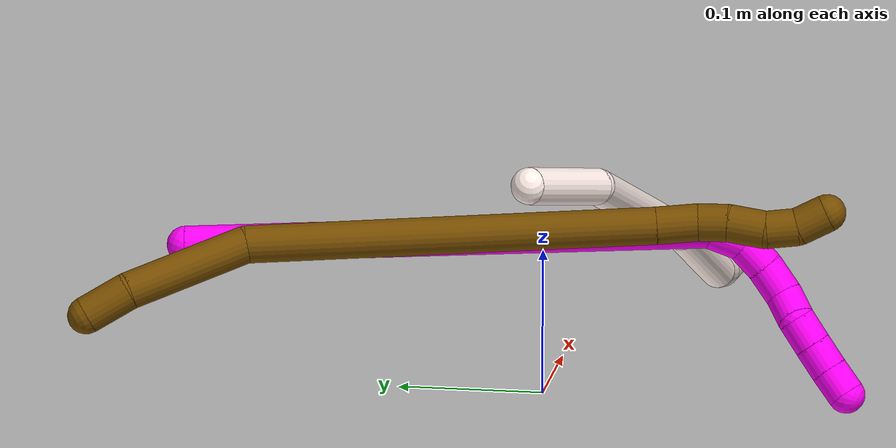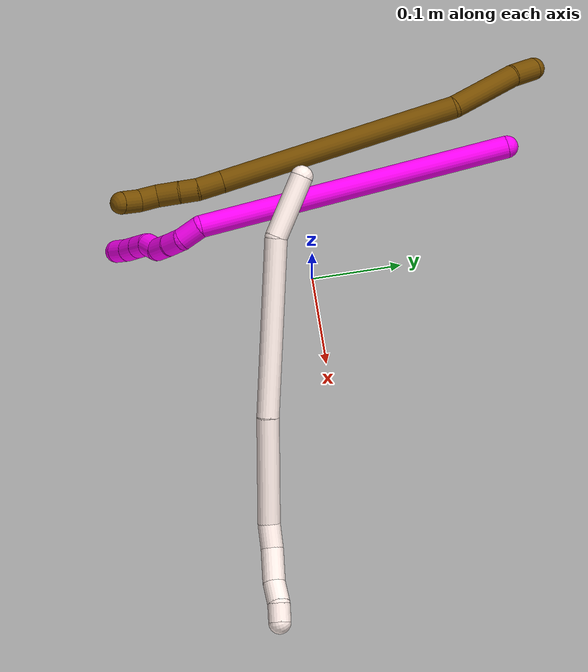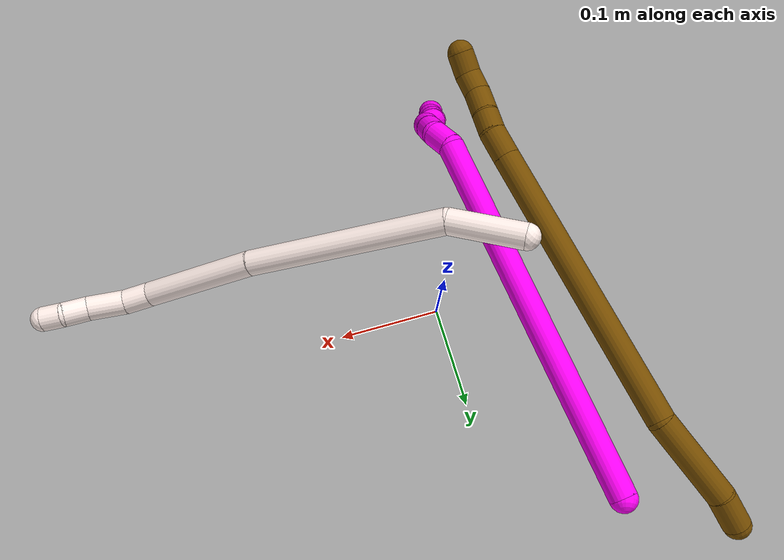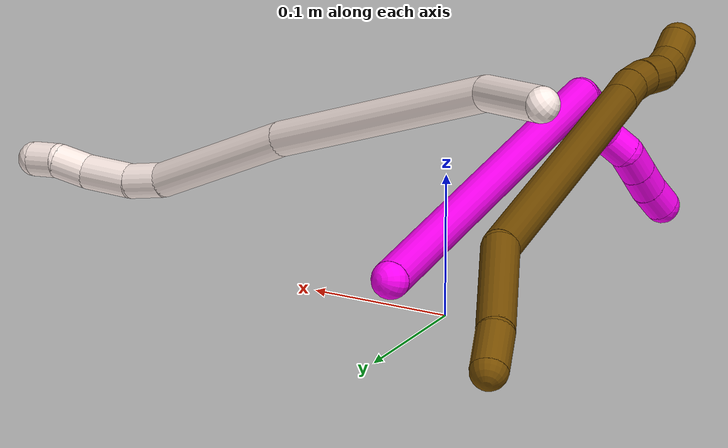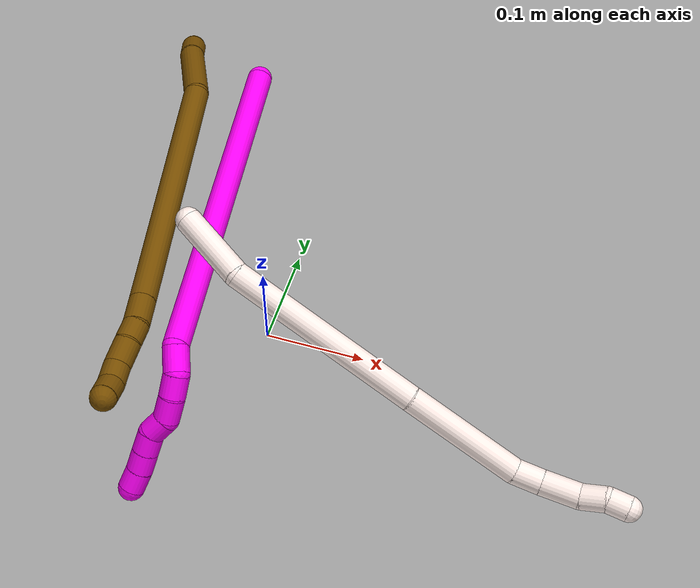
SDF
<sdf version="1.7">
 <world name="default">
  <model name="photoneo_s_sensor">
   <static>1</static>
   <pose>0 0 2 1.57079 1.57079 3.14159</pose>
   <link name="link">
    <inertial><mass>0.1</mass></inertial>
    <sensor name="sensor" type="depth">
     <update_rate>30</update_rate>
     <camera>
      <horizontal_fov>1.22</horizontal_fov>
      <image><width>1920</width><height>1200</height><format>B8G8R8</format></image>
      <clip><near>0.1</near><far>4</far></clip>
      <depth_camera><output>points</output></depth_camera>
     </camera>
     <plugin name="camera_plugin" filename="libgazebo_ros_depth_camera.so">
      <baseline>0.2</baseline>
      <alwaysOn>1</alwaysOn>
      <updateRate>0.0</updateRate>
      <cameraName>camera_ir</cameraName>
      <imageTopicName>/camera/color/image_raw</imageTopicName>
      <cameraInfoTopicName>/camera/color/camera_info</cameraInfoTopicName>
      <depthImageTopicName>/camera/depth/image_raw</depthImageTopicName>
      <depthImageCameraInfoTopicName>/camera/depth/camera_info</depthImageCameraInfoTopicName>
      <pointCloudTopicName>/camera/depth/points</pointCloudTopicName>
      <frameName>fr_optical</frameName>
      <pointCloudCutoff>0.1</pointCloudCutoff>
      <pointCloudCutoffMax>2.0</pointCloudCutoffMax>
      <distortionK1>0</distortionK1>
      <distortionK2>0</distortionK2>
      <distortionK3>0</distortionK3>
      <distortionT1>0</distortionT1>
      <distortionT2>0</distortionT2>
      <CxPrime>0</CxPrime>
      <Cx>0</Cx>
      <Cy>0</Cy>
      <focalLength>0</focalLength>
      <hackBaseline>0</hackBaseline>
     </plugin>
    </sensor>
   </link>
  </model>
  <model name="bin">
   <static>1</static>
   <link name="bottom">
    <collision name="collision-bottom">
     <pose>0 0 -0.01 0 -0 0</pose>
     <geometry><box><size>0.8 0.6 0.02</size></box></geometry>
     <surface>
      <friction><ode><mu>100</mu><mu2>100</mu2></ode></friction>
      <contact><collide_bitmask>65535</collide_bitmask></contact>
     </surface>
    </collision>
   </link>
   <link name="west_wall">
    <collision name="collision-west_wall">
     <pose>-0.41 0 0.1 0 -0 0</pose>
     <geometry><box><size>0.02 0.6 0.2</size></box></geometry>
     <surface>
      <friction><ode><mu>100</mu><mu2>100</mu2></ode></friction>
      <contact><collide_bitmask>65535</collide_bitmask></contact>
     </surface>
    </collision>
   </link>
   <link name="east_wall">
    <collision name="collision-east_wall">
     <pose>0.41 0 0.1 0 -0 0</pose>
     <geometry><box><size>0.02 0.6 0.2</size></box></geometry>
     <surface>
      <friction><ode><mu>100</mu><mu2>100</mu2></ode></friction>
      <contact><collide_bitmask>65535</collide_bitmask></contact>
     </surface>
    </collision>
   </link>
   <link name="south_wall">
    <collision name="collision-south_wall">
     <pose>0 -0.31 0.1 0 -0 0</pose>
     <geometry><box><size>0.8 0.02 0.2</size></box></geometry>
     <surface>
      <friction><ode><mu>100</mu><mu2>100</mu2></ode></friction>
      <contact><collide_bitmask>65535</collide_bitmask></contact>
     </surface>
    </collision>
   </link>
   <link name="north_wall">
    <collision name="collision-north_wall">
     <pose>0 0.31 0.1 0 -0 0</pose>
     <geometry><box><size>0.8 0.02 0.2</size></box></geometry>
     <surface>
      <friction><ode><mu>100</mu><mu2>100</mu2></ode></friction>
      <contact><collide_bitmask>65535</collide_bitmask></contact>
     </surface>
    </collision>
   </link>
  </model>
  <model name="10">
   <static>0</static>
   <link name="10">
    <collision name="collision-cylinder-e_1_1_4">
     <pose>0.041733 -0.072814 -0.153196 2.6979 0.241249 0.986218</pose>
     <geometry><cylinder><radius>0.0125</radius><length>0.349356</length></cylinder></geometry>
     <surface>
      <friction><ode><mu>1.16</mu><mu2>1.16</mu2><slip1>0</slip1><slip2>0</slip2></ode></friction>
      <contact><ode><kp>1e+06</kp><kd>1</kd><max_vel>0</max_vel><min_depth>0.001</min_depth></ode></contact>
     </surface>
    </collision>
    <visual name="visual-cylinder-e_1_1_4">
     <pose>0.041733 -0.072814 -0.153196 2.6979 0.241249 0.986218</pose>
     <geometry><cylinder><radius>0.0125</radius><length>0.349356</length></cylinder></geometry>
     <material><ambient>1 0 0.964706 1</ambient></material>
    </visual>
    <collision name="collision-cylinder-e_2_4_5">
     <pose>0.090912 -0.146474 -0.3166 3.05892 0.628523 2.88845</pose>
     <geometry><cylinder><radius>0.0125</radius><length>0.025327</length></cylinder></geometry>
     <surface>
      <friction><ode><mu>1.16</mu><mu2>1.16</mu2><slip1>0</slip1><slip2>0</slip2></ode></friction>
      <contact><ode><kp>1e+06</kp><kd>1</kd><max_vel>0</max_vel><min_depth>0.001</min_depth></ode></contact>
     </surface>
    </collision>
    <visual name="visual-cylinder-e_2_4_5">
     <pose>0.090912 -0.146474 -0.3166 3.05892 0.628523 2.88845</pose>
     <geometry><cylinder><radius>0.0125</radius><length>0.025327</length></cylinder></geometry>
     <material><ambient>1 0 0.964706 1</ambient></material>
    </visual>
    <collision name="collision-cylinder-e_3_5_6">
     <pose>0.102739 -0.142999 -0.335895 -2.69773 0.410664 -1.49072</pose>
     <geometry><cylinder><radius>0.0125</radius><length>0.021947</length></cylinder></geometry>
     <surface>
      <friction><ode><mu>1.16</mu><mu2>1.16</mu2><slip1>0</slip1><slip2>0</slip2></ode></friction>
      <contact><ode><kp>1e+06</kp><kd>1</kd><max_vel>0</max_vel><min_depth>0.001</min_depth></ode></contact>
     </surface>
    </collision>
    <visual name="visual-cylinder-e_3_5_6">
     <pose>0.102739 -0.142999 -0.335895 -2.69773 0.410664 -1.49072</pose>
     <geometry><cylinder><radius>0.0125</radius><length>0.021947</length></cylinder></geometry>
     <material><ambient>1 0 0.964706 1</ambient></material>
    </visual>
    <collision name="collision-cylinder-e_4_6_7">
     <pose>0.110968 -0.132607 -0.353857 -2.54167 0.343654 -1.02262</pose>
     <geometry><cylinder><radius>0.0125</radius><length>0.022843</length></cylinder></geometry>
     <surface>
      <friction><ode><mu>1.16</mu><mu2>1.16</mu2><slip1>0</slip1><slip2>0</slip2></ode></friction>
      <contact><ode><kp>1e+06</kp><kd>1</kd><max_vel>0</max_vel><min_depth>0.001</min_depth></ode></contact>
     </surface>
    </collision>
    <visual name="visual-cylinder-e_4_6_7">
     <pose>0.110968 -0.132607 -0.353857 -2.54167 0.343654 -1.02262</pose>
     <geometry><cylinder><radius>0.0125</radius><length>0.022843</length></cylinder></geometry>
     <material><ambient>1 0 0.964706 1</ambient></material>
    </visual>
    <collision name="collision-cylinder-e_5_7_8">
     <pose>0.113174 -0.120191 -0.370514 -2.45751 -0.162101 0.448615</pose>
     <geometry><cylinder><radius>0.0125</radius><length>0.020345</length></cylinder></geometry>
     <surface>
      <friction><ode><mu>1.16</mu><mu2>1.16</mu2><slip1>0</slip1><slip2>0</slip2></ode></friction>
      <contact><ode><kp>1e+06</kp><kd>1</kd><max_vel>0</max_vel><min_depth>0.001</min_depth></ode></contact>
     </surface>
    </collision>
    <visual name="visual-cylinder-e_5_7_8">
     <pose>0.113174 -0.120191 -0.370514 -2.45751 -0.162101 0.448615</pose>
     <geometry><cylinder><radius>0.0125</radius><length>0.020345</length></cylinder></geometry>
     <material><ambient>1 0 0.964706 1</ambient></material>
    </visual>
    <collision name="collision-cylinder-e_6_8_9">
     <pose>0.114341 -0.108147 -0.386122 -2.51223 0.282308 -0.82324</pose>
     <geometry><cylinder><radius>0.0125</radius><length>0.020164</length></cylinder></geometry>
     <surface>
      <friction><ode><mu>1.16</mu><mu2>1.16</mu2><slip1>0</slip1><slip2>0</slip2></ode></friction>
      <contact><ode><kp>1e+06</kp><kd>1</kd><max_vel>0</max_vel><min_depth>0.001</min_depth></ode></contact>
     </surface>
    </collision>
    <visual name="visual-cylinder-e_6_8_9">
     <pose>0.114341 -0.108147 -0.386122 -2.51223 0.282308 -0.82324</pose>
     <geometry><cylinder><radius>0.0125</radius><length>0.020164</length></cylinder></geometry>
     <material><ambient>1 0 0.964706 1</ambient></material>
    </visual>
    <collision name="collision-cylinder-e_7_9_10">
     <pose>0.120047 -0.096901 -0.40175 -2.52352 0.293958 -0.868401</pose>
     <geometry><cylinder><radius>0.0125</radius><length>0.02</length></cylinder></geometry>
     <surface>
      <friction><ode><mu>1.16</mu><mu2>1.16</mu2><slip1>0</slip1><slip2>0</slip2></ode></friction>
      <contact><ode><kp>1e+06</kp><kd>1</kd><max_vel>0</max_vel><min_depth>0.001</min_depth></ode></contact>
     </surface>
    </collision>
    <visual name="visual-cylinder-e_7_9_10">
     <pose>0.120047 -0.096901 -0.40175 -2.52352 0.293958 -0.868401</pose>
     <geometry><cylinder><radius>0.0125</radius><length>0.02</length></cylinder></geometry>
     <material><ambient>1 0 0.964706 1</ambient></material>
    </visual>
    <collision name="collision-cylinder-e_8_10_2">
     <pose>0.124879 -0.08599 -0.417774 -2.56353 0.194471 -0.633942</pose>
     <geometry><cylinder><radius>0.0125</radius><length>0.020016</length></cylinder></geometry>
     <surface>
      <friction><ode><mu>1.16</mu><mu2>1.16</mu2><slip1>0</slip1><slip2>0</slip2></ode></friction>
      <contact><ode><kp>1e+06</kp><kd>1</kd><max_vel>0</max_vel><min_depth>0.001</min_depth></ode></contact>
     </surface>
    </collision>
    <visual name="visual-cylinder-e_8_10_2">
     <pose>0.124879 -0.08599 -0.417774 -2.56353 0.194471 -0.633942</pose>
     <geometry><cylinder><radius>0.0125</radius><length>0.020016</length></cylinder></geometry>
     <material><ambient>1 0 0.964706 1</ambient></material>
    </visual>
    <collision name="collision-sphere-2">
     <pose>0.126813 -0.080625 -0.425998 0 -0 0</pose>
     <geometry><sphere><radius>0.0125</radius></sphere></geometry>
     <surface>
      <friction><ode><mu>1.16</mu><mu2>1.16</mu2><slip1>0</slip1><slip2>0</slip2></ode></friction>
      <contact><ode><kp>1e+06</kp><kd>1</kd><max_vel>0</max_vel><min_depth>0.001</min_depth></ode></contact>
     </surface>
    </collision>
    <visual name="visual-sphere-2">
     <pose>0.126813 -0.080625 -0.425998 0 -0 0</pose>
     <geometry><sphere><radius>0.0125</radius></sphere></geometry>
     <material><ambient>1 0 0.964706 1</ambient></material>
    </visual>
    <collision name="collision-sphere-10">
     <pose>0.122945 -0.091355 -0.409551 0 -0 0</pose>
     <geometry><sphere><radius>0.0125</radius></sphere></geometry>
     <surface>
      <friction><ode><mu>1.16</mu><mu2>1.16</mu2><slip1>0</slip1><slip2>0</slip2></ode></friction>
      <contact><ode><kp>1e+06</kp><kd>1</kd><max_vel>0</max_vel><min_depth>0.001</min_depth></ode></contact>
     </surface>
    </collision>
    <visual name="visual-sphere-10">
     <pose>0.122945 -0.091355 -0.409551 0 -0 0</pose>
     <geometry><sphere><radius>0.0125</radius></sphere></geometry>
     <material><ambient>1 0 0.964706 1</ambient></material>
    </visual>
    <collision name="collision-sphere-9">
     <pose>0.11715 -0.102448 -0.393949 0 -0 0</pose>
     <geometry><sphere><radius>0.0125</radius></sphere></geometry>
     <surface>
      <friction><ode><mu>1.16</mu><mu2>1.16</mu2><slip1>0</slip1><slip2>0</slip2></ode></friction>
      <contact><ode><kp>1e+06</kp><kd>1</kd><max_vel>0</max_vel><min_depth>0.001</min_depth></ode></contact>
     </surface>
    </collision>
    <visual name="visual-sphere-9">
     <pose>0.11715 -0.102448 -0.393949 0 -0 0</pose>
     <geometry><sphere><radius>0.0125</radius></sphere></geometry>
     <material><ambient>1 0 0.964706 1</ambient></material>
    </visual>
    <collision name="collision-sphere-4">
     <pose>0.083467 -0.145628 -0.306391 0 -0 0</pose>
     <geometry><sphere><radius>0.0125</radius></sphere></geometry>
     <surface>
      <friction><ode><mu>1.16</mu><mu2>1.16</mu2><slip1>0</slip1><slip2>0</slip2></ode></friction>
      <contact><ode><kp>1e+06</kp><kd>1</kd><max_vel>0</max_vel><min_depth>0.001</min_depth></ode></contact>
     </surface>
    </collision>
    <visual name="visual-sphere-4">
     <pose>0.083467 -0.145628 -0.306391 0 -0 0</pose>
     <geometry><sphere><radius>0.0125</radius></sphere></geometry>
     <material><ambient>1 0 0.964706 1</ambient></material>
    </visual>
    <collision name="collision-sphere-1">
     <geometry><sphere><radius>0.0125</radius></sphere></geometry>
     <surface>
      <friction><ode><mu>1.16</mu><mu2>1.16</mu2><slip1>0</slip1><slip2>0</slip2></ode></friction>
      <contact><ode><kp>1e+06</kp><kd>1</kd><max_vel>0</max_vel><min_depth>0.001</min_depth></ode></contact>
     </surface>
    </collision>
    <visual name="visual-sphere-1">
     <geometry><sphere><radius>0.0125</radius></sphere></geometry>
     <material><ambient>1 0 0.964706 1</ambient></material>
    </visual>
    <collision name="collision-sphere-8">
     <pose>0.111533 -0.113847 -0.378294 0 -0 0</pose>
     <geometry><sphere><radius>0.0125</radius></sphere></geometry>
     <surface>
      <friction><ode><mu>1.16</mu><mu2>1.16</mu2><slip1>0</slip1><slip2>0</slip2></ode></friction>
      <contact><ode><kp>1e+06</kp><kd>1</kd><max_vel>0</max_vel><min_depth>0.001</min_depth></ode></contact>
     </surface>
    </collision>
    <visual name="visual-sphere-8">
     <pose>0.111533 -0.113847 -0.378294 0 -0 0</pose>
     <geometry><sphere><radius>0.0125</radius></sphere></geometry>
     <material><ambient>1 0 0.964706 1</ambient></material>
    </visual>
    <collision name="collision-sphere-5">
     <pose>0.098358 -0.14732 -0.326809 0 -0 0</pose>
     <geometry><sphere><radius>0.0125</radius></sphere></geometry>
     <surface>
      <friction><ode><mu>1.16</mu><mu2>1.16</mu2><slip1>0</slip1><slip2>0</slip2></ode></friction>
      <contact><ode><kp>1e+06</kp><kd>1</kd><max_vel>0</max_vel><min_depth>0.001</min_depth></ode></contact>
     </surface>
    </collision>
    <visual name="visual-sphere-5">
     <pose>0.098358 -0.14732 -0.326809 0 -0 0</pose>
     <geometry><sphere><radius>0.0125</radius></sphere></geometry>
     <material><ambient>1 0 0.964706 1</ambient></material>
    </visual>
    <collision name="collision-sphere-6">
     <pose>0.10712 -0.138678 -0.344981 0 -0 0</pose>
     <geometry><sphere><radius>0.0125</radius></sphere></geometry>
     <surface>
      <friction><ode><mu>1.16</mu><mu2>1.16</mu2><slip1>0</slip1><slip2>0</slip2></ode></friction>
      <contact><ode><kp>1e+06</kp><kd>1</kd><max_vel>0</max_vel><min_depth>0.001</min_depth></ode></contact>
     </surface>
    </collision>
    <visual name="visual-sphere-6">
     <pose>0.10712 -0.138678 -0.344981 0 -0 0</pose>
     <geometry><sphere><radius>0.0125</radius></sphere></geometry>
     <material><ambient>1 0 0.964706 1</ambient></material>
    </visual>
    <collision name="collision-sphere-7">
     <pose>0.114816 -0.126536 -0.362733 0 -0 0</pose>
     <geometry><sphere><radius>0.0125</radius></sphere></geometry>
     <surface>
      <friction><ode><mu>1.16</mu><mu2>1.16</mu2><slip1>0</slip1><slip2>0</slip2></ode></friction>
      <contact><ode><kp>1e+06</kp><kd>1</kd><max_vel>0</max_vel><min_depth>0.001</min_depth></ode></contact>
     </surface>
    </collision>
    <visual name="visual-sphere-7">
     <pose>0.114816 -0.126536 -0.362733 0 -0 0</pose>
     <geometry><sphere><radius>0.0125</radius></sphere></geometry>
     <material><ambient>1 0 0.964706 1</ambient></material>
    </visual>
    <inertial>
     <pose>0.062362 -0.087201 -0.21743 0 -0 0</pose>
     <mass>0.5</mass>
     <inertia>
      <ixx>0.004808</ixx>
      <ixy>0</ixy>
      <ixz>0</ixz>
      <iyy>0.001403</iyy>
      <iyz>0</iyz>
      <izz>0.000593</izz>
     </inertia>
    </inertial>
   </link>
   <pose>-0.083017 0.22984 0.115384 -1.28594 0.439164 -0.164664</pose>
  </model>
  <model name="11">
   <static>0</static>
   <link name="11">
    <collision name="collision-cylinder-e_1_1_4">
     <pose>-0.001241 -0.028136 -0.022313 2.24129 -0.034547 -0.071467</pose>
     <geometry><cylinder><radius>0.0125</radius><length>0.071863</length></cylinder></geometry>
     <surface>
      <friction><ode><mu>1.16</mu><mu2>1.16</mu2><slip1>0</slip1><slip2>0</slip2></ode></friction>
      <contact><ode><kp>1e+06</kp><kd>1</kd><max_vel>0</max_vel><min_depth>0.001</min_depth></ode></contact>
     </surface>
    </collision>
    <visual name="visual-cylinder-e_1_1_4">
     <pose>-0.001241 -0.028136 -0.022313 2.24129 -0.034547 -0.071467</pose>
     <geometry><cylinder><radius>0.0125</radius><length>0.071863</length></cylinder></geometry>
     <material><ambient>1 0.933333 0.909804 1</ambient></material>
    </visual>
    <collision name="collision-cylinder-e_2_4_5">
     <pose>0.002952 -0.104709 -0.130265 2.62685 0.055175 0.208915</pose>
     <geometry><cylinder><radius>0.0125</radius><length>0.197074</length></cylinder></geometry>
     <surface>
      <friction><ode><mu>1.16</mu><mu2>1.16</mu2><slip1>0</slip1><slip2>0</slip2></ode></friction>
      <contact><ode><kp>1e+06</kp><kd>1</kd><max_vel>0</max_vel><min_depth>0.001</min_depth></ode></contact>
     </surface>
    </collision>
    <visual name="visual-cylinder-e_2_4_5">
     <pose>0.002952 -0.104709 -0.130265 2.62685 0.055175 0.208915</pose>
     <geometry><cylinder><radius>0.0125</radius><length>0.197074</length></cylinder></geometry>
     <material><ambient>1 0.933333 0.909804 1</ambient></material>
    </visual>
    <collision name="collision-cylinder-e_3_5_6">
     <pose>0.009995 -0.177554 -0.270323 2.71996 0.026977 0.125904</pose>
     <geometry><cylinder><radius>0.0125</radius><length>0.119331</length></cylinder></geometry>
     <surface>
      <friction><ode><mu>1.16</mu><mu2>1.16</mu2><slip1>0</slip1><slip2>0</slip2></ode></friction>
      <contact><ode><kp>1e+06</kp><kd>1</kd><max_vel>0</max_vel><min_depth>0.001</min_depth></ode></contact>
     </surface>
    </collision>
    <visual name="visual-cylinder-e_3_5_6">
     <pose>0.009995 -0.177554 -0.270323 2.71996 0.026977 0.125904</pose>
     <geometry><cylinder><radius>0.0125</radius><length>0.119331</length></cylinder></geometry>
     <material><ambient>1 0.933333 0.909804 1</ambient></material>
    </visual>
    <collision name="collision-cylinder-e_4_6_7">
     <pose>0.015596 -0.208174 -0.336376 2.6512 0.293937 1.06844</pose>
     <geometry><cylinder><radius>0.0125</radius><length>0.027555</length></cylinder></geometry>
     <surface>
      <friction><ode><mu>1.16</mu><mu2>1.16</mu2><slip1>0</slip1><slip2>0</slip2></ode></friction>
      <contact><ode><kp>1e+06</kp><kd>1</kd><max_vel>0</max_vel><min_depth>0.001</min_depth></ode></contact>
     </surface>
    </collision>
    <visual name="visual-cylinder-e_4_6_7">
     <pose>0.015596 -0.208174 -0.336376 2.6512 0.293937 1.06844</pose>
     <geometry><cylinder><radius>0.0125</radius><length>0.027555</length></cylinder></geometry>
     <material><ambient>1 0.933333 0.909804 1</ambient></material>
    </visual>
    <collision name="collision-cylinder-e_5_7_8">
     <pose>0.027034 -0.225363 -0.361692 2.46546 0.401405 1.04919</pose>
     <geometry><cylinder><radius>0.0125</radius><length>0.038116</length></cylinder></geometry>
     <surface>
      <friction><ode><mu>1.16</mu><mu2>1.16</mu2><slip1>0</slip1><slip2>0</slip2></ode></friction>
      <contact><ode><kp>1e+06</kp><kd>1</kd><max_vel>0</max_vel><min_depth>0.001</min_depth></ode></contact>
     </surface>
    </collision>
    <visual name="visual-cylinder-e_5_7_8">
     <pose>0.027034 -0.225363 -0.361692 2.46546 0.401405 1.04919</pose>
     <geometry><cylinder><radius>0.0125</radius><length>0.038116</length></cylinder></geometry>
     <material><ambient>1 0.933333 0.909804 1</ambient></material>
    </visual>
    <collision name="collision-cylinder-e_6_8_9">
     <pose>0.042143 -0.242697 -0.382925 2.44179 0.660252 1.50793</pose>
     <geometry><cylinder><radius>0.0125</radius><length>0.024988</length></cylinder></geometry>
     <surface>
      <friction><ode><mu>1.16</mu><mu2>1.16</mu2><slip1>0</slip1><slip2>0</slip2></ode></friction>
      <contact><ode><kp>1e+06</kp><kd>1</kd><max_vel>0</max_vel><min_depth>0.001</min_depth></ode></contact>
     </surface>
    </collision>
    <visual name="visual-cylinder-e_6_8_9">
     <pose>0.042143 -0.242697 -0.382925 2.44179 0.660252 1.50793</pose>
     <geometry><cylinder><radius>0.0125</radius><length>0.024988</length></cylinder></geometry>
     <material><ambient>1 0.933333 0.909804 1</ambient></material>
    </visual>
    <collision name="collision-cylinder-e_7_9_2">
     <pose>0.053062 -0.254726 -0.398735 2.53981 0.314097 0.94371</pose>
     <geometry><cylinder><radius>0.0125</radius><length>0.021073</length></cylinder></geometry>
     <surface>
      <friction><ode><mu>1.16</mu><mu2>1.16</mu2><slip1>0</slip1><slip2>0</slip2></ode></friction>
      <contact><ode><kp>1e+06</kp><kd>1</kd><max_vel>0</max_vel><min_depth>0.001</min_depth></ode></contact>
     </surface>
    </collision>
    <visual name="visual-cylinder-e_7_9_2">
     <pose>0.053062 -0.254726 -0.398735 2.53981 0.314097 0.94371</pose>
     <geometry><cylinder><radius>0.0125</radius><length>0.021073</length></cylinder></geometry>
     <material><ambient>1 0.933333 0.909804 1</ambient></material>
    </visual>
    <collision name="collision-sphere-2">
     <pose>0.056317 -0.260399 -0.406995 0 -0 0</pose>
     <geometry><sphere><radius>0.0125</radius></sphere></geometry>
     <surface>
      <friction><ode><mu>1.16</mu><mu2>1.16</mu2><slip1>0</slip1><slip2>0</slip2></ode></friction>
      <contact><ode><kp>1e+06</kp><kd>1</kd><max_vel>0</max_vel><min_depth>0.001</min_depth></ode></contact>
     </surface>
    </collision>
    <visual name="visual-sphere-2">
     <pose>0.056317 -0.260399 -0.406995 0 -0 0</pose>
     <geometry><sphere><radius>0.0125</radius></sphere></geometry>
     <material><ambient>1 0.933333 0.909804 1</ambient></material>
    </visual>
    <collision name="collision-sphere-9">
     <pose>0.049806 -0.249053 -0.390474 0 -0 0</pose>
     <geometry><sphere><radius>0.0125</radius></sphere></geometry>
     <surface>
      <friction><ode><mu>1.16</mu><mu2>1.16</mu2><slip1>0</slip1><slip2>0</slip2></ode></friction>
      <contact><ode><kp>1e+06</kp><kd>1</kd><max_vel>0</max_vel><min_depth>0.001</min_depth></ode></contact>
     </surface>
    </collision>
    <visual name="visual-sphere-9">
     <pose>0.049806 -0.249053 -0.390474 0 -0 0</pose>
     <geometry><sphere><radius>0.0125</radius></sphere></geometry>
     <material><ambient>1 0.933333 0.909804 1</ambient></material>
    </visual>
    <collision name="collision-sphere-4">
     <pose>-0.002482 -0.056272 -0.044627 0 -0 0</pose>
     <geometry><sphere><radius>0.0125</radius></sphere></geometry>
     <surface>
      <friction><ode><mu>1.16</mu><mu2>1.16</mu2><slip1>0</slip1><slip2>0</slip2></ode></friction>
      <contact><ode><kp>1e+06</kp><kd>1</kd><max_vel>0</max_vel><min_depth>0.001</min_depth></ode></contact>
     </surface>
    </collision>
    <visual name="visual-sphere-4">
     <pose>-0.002482 -0.056272 -0.044627 0 -0 0</pose>
     <geometry><sphere><radius>0.0125</radius></sphere></geometry>
     <material><ambient>1 0.933333 0.909804 1</ambient></material>
    </visual>
    <collision name="collision-sphere-1">
     <geometry><sphere><radius>0.0125</radius></sphere></geometry>
     <surface>
      <friction><ode><mu>1.16</mu><mu2>1.16</mu2><slip1>0</slip1><slip2>0</slip2></ode></friction>
      <contact><ode><kp>1e+06</kp><kd>1</kd><max_vel>0</max_vel><min_depth>0.001</min_depth></ode></contact>
     </surface>
    </collision>
    <visual name="visual-sphere-1">
     <geometry><sphere><radius>0.0125</radius></sphere></geometry>
     <material><ambient>1 0.933333 0.909804 1</ambient></material>
    </visual>
    <collision name="collision-sphere-8">
     <pose>0.03448 -0.236341 -0.375376 0 -0 0</pose>
     <geometry><sphere><radius>0.0125</radius></sphere></geometry>
     <surface>
      <friction><ode><mu>1.16</mu><mu2>1.16</mu2><slip1>0</slip1><slip2>0</slip2></ode></friction>
      <contact><ode><kp>1e+06</kp><kd>1</kd><max_vel>0</max_vel><min_depth>0.001</min_depth></ode></contact>
     </surface>
    </collision>
    <visual name="visual-sphere-8">
     <pose>0.03448 -0.236341 -0.375376 0 -0 0</pose>
     <geometry><sphere><radius>0.0125</radius></sphere></geometry>
     <material><ambient>1 0.933333 0.909804 1</ambient></material>
    </visual>
    <collision name="collision-sphere-5">
     <pose>0.008386 -0.153145 -0.215903 0 -0 0</pose>
     <geometry><sphere><radius>0.0125</radius></sphere></geometry>
     <surface>
      <friction><ode><mu>1.16</mu><mu2>1.16</mu2><slip1>0</slip1><slip2>0</slip2></ode></friction>
      <contact><ode><kp>1e+06</kp><kd>1</kd><max_vel>0</max_vel><min_depth>0.001</min_depth></ode></contact>
     </surface>
    </collision>
    <visual name="visual-sphere-5">
     <pose>0.008386 -0.153145 -0.215903 0 -0 0</pose>
     <geometry><sphere><radius>0.0125</radius></sphere></geometry>
     <material><ambient>1 0.933333 0.909804 1</ambient></material>
    </visual>
    <collision name="collision-sphere-6">
     <pose>0.011605 -0.201963 -0.324743 0 -0 0</pose>
     <geometry><sphere><radius>0.0125</radius></sphere></geometry>
     <surface>
      <friction><ode><mu>1.16</mu><mu2>1.16</mu2><slip1>0</slip1><slip2>0</slip2></ode></friction>
      <contact><ode><kp>1e+06</kp><kd>1</kd><max_vel>0</max_vel><min_depth>0.001</min_depth></ode></contact>
     </surface>
    </collision>
    <visual name="visual-sphere-6">
     <pose>0.011605 -0.201963 -0.324743 0 -0 0</pose>
     <geometry><sphere><radius>0.0125</radius></sphere></geometry>
     <material><ambient>1 0.933333 0.909804 1</ambient></material>
    </visual>
    <collision name="collision-sphere-7">
     <pose>0.019588 -0.214384 -0.348008 0 -0 0</pose>
     <geometry><sphere><radius>0.0125</radius></sphere></geometry>
     <surface>
      <friction><ode><mu>1.16</mu><mu2>1.16</mu2><slip1>0</slip1><slip2>0</slip2></ode></friction>
      <contact><ode><kp>1e+06</kp><kd>1</kd><max_vel>0</max_vel><min_depth>0.001</min_depth></ode></contact>
     </surface>
    </collision>
    <visual name="visual-sphere-7">
     <pose>0.019588 -0.214384 -0.348008 0 -0 0</pose>
     <geometry><sphere><radius>0.0125</radius></sphere></geometry>
     <material><ambient>1 0.933333 0.909804 1</ambient></material>
    </visual>
    <inertial>
     <pose>0.010633 -0.139207 -0.201119 0 -0 0</pose>
     <mass>0.5</mass>
     <inertia>
      <ixx>0.000979</ixx>
      <ixy>0</ixy>
      <ixz>0</ixz>
      <iyy>-0.000561</iyy>
      <iyz>0</iyz>
      <izz>0.000335</izz>
     </inertia>
    </inertial>
   </link>
   <pose>-0.070042 -0.000303 0.160504 -0.46207 -0.754529 0.892851</pose>
  </model>
  <model name="12">
   <static>0</static>
   <link name="12">
    <collision name="collision-cylinder-e_1_1_4">
     <pose>6.8e-05 -0.000189 0.015756 0.011964 0.004322 2.6e-05</pose>
     <geometry><cylinder><radius>0.0125</radius><length>0.031515</length></cylinder></geometry>
     <surface>
      <friction><ode><mu>1.16</mu><mu2>1.16</mu2><slip1>0</slip1><slip2>0</slip2></ode></friction>
      <contact><ode><kp>1e+06</kp><kd>1</kd><max_vel>0</max_vel><min_depth>0.001</min_depth></ode></contact>
     </surface>
    </collision>
    <visual name="visual-cylinder-e_1_1_4">
     <pose>6.8e-05 -0.000189 0.015756 0.011964 0.004322 2.6e-05</pose>
     <geometry><cylinder><radius>0.0125</radius><length>0.031515</length></cylinder></geometry>
     <material><ambient>0.466667 0.301961 0 1</ambient></material>
    </visual>
    <collision name="collision-cylinder-e_2_4_5">
     <pose>0.005287 -0.007672 0.07233 0.176861 0.123599 0.010972</pose>
     <geometry><cylinder><radius>0.0125</radius><length>0.083567</length></cylinder></geometry>
     <surface>
      <friction><ode><mu>1.16</mu><mu2>1.16</mu2><slip1>0</slip1><slip2>0</slip2></ode></friction>
      <contact><ode><kp>1e+06</kp><kd>1</kd><max_vel>0</max_vel><min_depth>0.001</min_depth></ode></contact>
     </surface>
    </collision>
    <visual name="visual-cylinder-e_2_4_5">
     <pose>0.005287 -0.007672 0.07233 0.176861 0.123599 0.010972</pose>
     <geometry><cylinder><radius>0.0125</radius><length>0.083567</length></cylinder></geometry>
     <material><ambient>0.466667 0.301961 0 1</ambient></material>
    </visual>
    <collision name="collision-cylinder-e_3_5_6">
     <pose>-0.002951 -0.077043 0.232136 0.48085 -0.099441 -0.024398</pose>
     <geometry><cylinder><radius>0.0125</radius><length>0.269746</length></cylinder></geometry>
     <surface>
      <friction><ode><mu>1.16</mu><mu2>1.16</mu2><slip1>0</slip1><slip2>0</slip2></ode></friction>
      <contact><ode><kp>1e+06</kp><kd>1</kd><max_vel>0</max_vel><min_depth>0.001</min_depth></ode></contact>
     </surface>
    </collision>
    <visual name="visual-cylinder-e_3_5_6">
     <pose>-0.002951 -0.077043 0.232136 0.48085 -0.099441 -0.024398</pose>
     <geometry><cylinder><radius>0.0125</radius><length>0.269746</length></cylinder></geometry>
     <material><ambient>0.466667 0.301961 0 1</ambient></material>
    </visual>
    <collision name="collision-cylinder-e_4_6_7">
     <pose>-0.017728 -0.145095 0.363657 0.445053 -0.099551 -0.022543</pose>
     <geometry><cylinder><radius>0.0125</radius><length>0.027908</length></cylinder></geometry>
     <surface>
      <friction><ode><mu>1.16</mu><mu2>1.16</mu2><slip1>0</slip1><slip2>0</slip2></ode></friction>
      <contact><ode><kp>1e+06</kp><kd>1</kd><max_vel>0</max_vel><min_depth>0.001</min_depth></ode></contact>
     </surface>
    </collision>
    <visual name="visual-cylinder-e_4_6_7">
     <pose>-0.017728 -0.145095 0.363657 0.445053 -0.099551 -0.022543</pose>
     <geometry><cylinder><radius>0.0125</radius><length>0.027908</length></cylinder></geometry>
     <material><ambient>0.466667 0.301961 0 1</ambient></material>
    </visual>
    <collision name="collision-cylinder-e_5_7_8">
     <pose>-0.021767 -0.155984 0.384498 0.533829 -0.26814 -0.073729</pose>
     <geometry><cylinder><radius>0.0125</radius><length>0.02002</length></cylinder></geometry>
     <surface>
      <friction><ode><mu>1.16</mu><mu2>1.16</mu2><slip1>0</slip1><slip2>0</slip2></ode></friction>
      <contact><ode><kp>1e+06</kp><kd>1</kd><max_vel>0</max_vel><min_depth>0.001</min_depth></ode></contact>
     </surface>
    </collision>
    <visual name="visual-cylinder-e_5_7_8">
     <pose>-0.021767 -0.155984 0.384498 0.533829 -0.26814 -0.073729</pose>
     <geometry><cylinder><radius>0.0125</radius><length>0.02002</length></cylinder></geometry>
     <material><ambient>0.466667 0.301961 0 1</ambient></material>
    </visual>
    <collision name="collision-cylinder-e_6_8_9">
     <pose>-0.027953 -0.168526 0.401953 0.695279 -0.288508 -0.105177</pose>
     <geometry><cylinder><radius>0.0125</radius><length>0.024847</length></cylinder></geometry>
     <surface>
      <friction><ode><mu>1.16</mu><mu2>1.16</mu2><slip1>0</slip1><slip2>0</slip2></ode></friction>
      <contact><ode><kp>1e+06</kp><kd>1</kd><max_vel>0</max_vel><min_depth>0.001</min_depth></ode></contact>
     </surface>
    </collision>
    <visual name="visual-cylinder-e_6_8_9">
     <pose>-0.027953 -0.168526 0.401953 0.695279 -0.288508 -0.105177</pose>
     <geometry><cylinder><radius>0.0125</radius><length>0.024847</length></cylinder></geometry>
     <material><ambient>0.466667 0.301961 0 1</ambient></material>
    </visual>
    <collision name="collision-cylinder-e_7_9_10">
     <pose>-0.033028 -0.180469 0.420552 0.428083 -0.147143 -0.03204</pose>
     <geometry><cylinder><radius>0.0125</radius><length>0.021008</length></cylinder></geometry>
     <surface>
      <friction><ode><mu>1.16</mu><mu2>1.16</mu2><slip1>0</slip1><slip2>0</slip2></ode></friction>
      <contact><ode><kp>1e+06</kp><kd>1</kd><max_vel>0</max_vel><min_depth>0.001</min_depth></ode></contact>
     </surface>
    </collision>
    <visual name="visual-cylinder-e_7_9_10">
     <pose>-0.033028 -0.180469 0.420552 0.428083 -0.147143 -0.03204</pose>
     <geometry><cylinder><radius>0.0125</radius><length>0.021008</length></cylinder></geometry>
     <material><ambient>0.466667 0.301961 0 1</ambient></material>
    </visual>
    <collision name="collision-cylinder-e_8_10_2">
     <pose>-0.036567 -0.185441 0.44049 0.062749 -0.188002 -0.005918</pose>
     <geometry><cylinder><radius>0.0125</radius><length>0.021388</length></cylinder></geometry>
     <surface>
      <friction><ode><mu>1.16</mu><mu2>1.16</mu2><slip1>0</slip1><slip2>0</slip2></ode></friction>
      <contact><ode><kp>1e+06</kp><kd>1</kd><max_vel>0</max_vel><min_depth>0.001</min_depth></ode></contact>
     </surface>
    </collision>
    <visual name="visual-cylinder-e_8_10_2">
     <pose>-0.036567 -0.185441 0.44049 0.062749 -0.188002 -0.005918</pose>
     <geometry><cylinder><radius>0.0125</radius><length>0.021388</length></cylinder></geometry>
     <material><ambient>0.466667 0.301961 0 1</ambient></material>
    </visual>
    <collision name="collision-sphere-2">
     <pose>-0.038566 -0.1861 0.450975 0 -0 0</pose>
     <geometry><sphere><radius>0.0125</radius></sphere></geometry>
     <surface>
      <friction><ode><mu>1.16</mu><mu2>1.16</mu2><slip1>0</slip1><slip2>0</slip2></ode></friction>
      <contact><ode><kp>1e+06</kp><kd>1</kd><max_vel>0</max_vel><min_depth>0.001</min_depth></ode></contact>
     </surface>
    </collision>
    <visual name="visual-sphere-2">
     <pose>-0.038566 -0.1861 0.450975 0 -0 0</pose>
     <geometry><sphere><radius>0.0125</radius></sphere></geometry>
     <material><ambient>0.466667 0.301961 0 1</ambient></material>
    </visual>
    <collision name="collision-sphere-10">
     <pose>-0.034568 -0.184782 0.430005 0 -0 0</pose>
     <geometry><sphere><radius>0.0125</radius></sphere></geometry>
     <surface>
      <friction><ode><mu>1.16</mu><mu2>1.16</mu2><slip1>0</slip1><slip2>0</slip2></ode></friction>
      <contact><ode><kp>1e+06</kp><kd>1</kd><max_vel>0</max_vel><min_depth>0.001</min_depth></ode></contact>
     </surface>
    </collision>
    <visual name="visual-sphere-10">
     <pose>-0.034568 -0.184782 0.430005 0 -0 0</pose>
     <geometry><sphere><radius>0.0125</radius></sphere></geometry>
     <material><ambient>0.466667 0.301961 0 1</ambient></material>
    </visual>
    <collision name="collision-sphere-9">
     <pose>-0.031488 -0.176155 0.411099 0 -0 0</pose>
     <geometry><sphere><radius>0.0125</radius></sphere></geometry>
     <surface>
      <friction><ode><mu>1.16</mu><mu2>1.16</mu2><slip1>0</slip1><slip2>0</slip2></ode></friction>
      <contact><ode><kp>1e+06</kp><kd>1</kd><max_vel>0</max_vel><min_depth>0.001</min_depth></ode></contact>
     </surface>
    </collision>
    <visual name="visual-sphere-9">
     <pose>-0.031488 -0.176155 0.411099 0 -0 0</pose>
     <geometry><sphere><radius>0.0125</radius></sphere></geometry>
     <material><ambient>0.466667 0.301961 0 1</ambient></material>
    </visual>
    <collision name="collision-sphere-4">
     <pose>0.000136 -0.000377 0.031512 0 -0 0</pose>
     <geometry><sphere><radius>0.0125</radius></sphere></geometry>
     <surface>
      <friction><ode><mu>1.16</mu><mu2>1.16</mu2><slip1>0</slip1><slip2>0</slip2></ode></friction>
      <contact><ode><kp>1e+06</kp><kd>1</kd><max_vel>0</max_vel><min_depth>0.001</min_depth></ode></contact>
     </surface>
    </collision>
    <visual name="visual-sphere-4">
     <pose>0.000136 -0.000377 0.031512 0 -0 0</pose>
     <geometry><sphere><radius>0.0125</radius></sphere></geometry>
     <material><ambient>0.466667 0.301961 0 1</ambient></material>
    </visual>
    <collision name="collision-sphere-1">
     <geometry><sphere><radius>0.0125</radius></sphere></geometry>
     <surface>
      <friction><ode><mu>1.16</mu><mu2>1.16</mu2><slip1>0</slip1><slip2>0</slip2></ode></friction>
      <contact><ode><kp>1e+06</kp><kd>1</kd><max_vel>0</max_vel><min_depth>0.001</min_depth></ode></contact>
     </surface>
    </collision>
    <visual name="visual-sphere-1">
     <geometry><sphere><radius>0.0125</radius></sphere></geometry>
     <material><ambient>0.466667 0.301961 0 1</ambient></material>
    </visual>
    <collision name="collision-sphere-8">
     <pose>-0.024419 -0.160896 0.392808 0 -0 0</pose>
     <geometry><sphere><radius>0.0125</radius></sphere></geometry>
     <surface>
      <friction><ode><mu>1.16</mu><mu2>1.16</mu2><slip1>0</slip1><slip2>0</slip2></ode></friction>
      <contact><ode><kp>1e+06</kp><kd>1</kd><max_vel>0</max_vel><min_depth>0.001</min_depth></ode></contact>
     </surface>
    </collision>
    <visual name="visual-sphere-8">
     <pose>-0.024419 -0.160896 0.392808 0 -0 0</pose>
     <geometry><sphere><radius>0.0125</radius></sphere></geometry>
     <material><ambient>0.466667 0.301961 0 1</ambient></material>
    </visual>
    <collision name="collision-sphere-5">
     <pose>0.010439 -0.014968 0.113148 0 -0 0</pose>
     <geometry><sphere><radius>0.0125</radius></sphere></geometry>
     <surface>
      <friction><ode><mu>1.16</mu><mu2>1.16</mu2><slip1>0</slip1><slip2>0</slip2></ode></friction>
      <contact><ode><kp>1e+06</kp><kd>1</kd><max_vel>0</max_vel><min_depth>0.001</min_depth></ode></contact>
     </surface>
    </collision>
    <visual name="visual-sphere-5">
     <pose>0.010439 -0.014968 0.113148 0 -0 0</pose>
     <geometry><sphere><radius>0.0125</radius></sphere></geometry>
     <material><ambient>0.466667 0.301961 0 1</ambient></material>
    </visual>
    <collision name="collision-sphere-6">
     <pose>-0.016341 -0.139118 0.351124 0 -0 0</pose>
     <geometry><sphere><radius>0.0125</radius></sphere></geometry>
     <surface>
      <friction><ode><mu>1.16</mu><mu2>1.16</mu2><slip1>0</slip1><slip2>0</slip2></ode></friction>
      <contact><ode><kp>1e+06</kp><kd>1</kd><max_vel>0</max_vel><min_depth>0.001</min_depth></ode></contact>
     </surface>
    </collision>
    <visual name="visual-sphere-6">
     <pose>-0.016341 -0.139118 0.351124 0 -0 0</pose>
     <geometry><sphere><radius>0.0125</radius></sphere></geometry>
     <material><ambient>0.466667 0.301961 0 1</ambient></material>
    </visual>
    <collision name="collision-sphere-7">
     <pose>-0.019115 -0.151073 0.376189 0 -0 0</pose>
     <geometry><sphere><radius>0.0125</radius></sphere></geometry>
     <surface>
      <friction><ode><mu>1.16</mu><mu2>1.16</mu2><slip1>0</slip1><slip2>0</slip2></ode></friction>
      <contact><ode><kp>1e+06</kp><kd>1</kd><max_vel>0</max_vel><min_depth>0.001</min_depth></ode></contact>
     </surface>
    </collision>
    <visual name="visual-sphere-7">
     <pose>-0.019115 -0.151073 0.376189 0 -0 0</pose>
     <geometry><sphere><radius>0.0125</radius></sphere></geometry>
     <material><ambient>0.466667 0.301961 0 1</ambient></material>
    </visual>
    <inertial>
     <pose>-0.006906 -0.081093 0.230499 0 -0 0</pose>
     <mass>0.5</mass>
     <inertia><ixx>0.00166</ixx><ixy>0</ixy><ixz>0</ixz><iyy>0.00147</iyy><iyz>0</iyz><izz>0.000965</izz></inertia>
    </inertial>
   </link>
   <pose>-0.17638 0.27655 0.088381 1.06063 0.112993 0.277502</pose>
  </model>
 </world>
</sdf>
